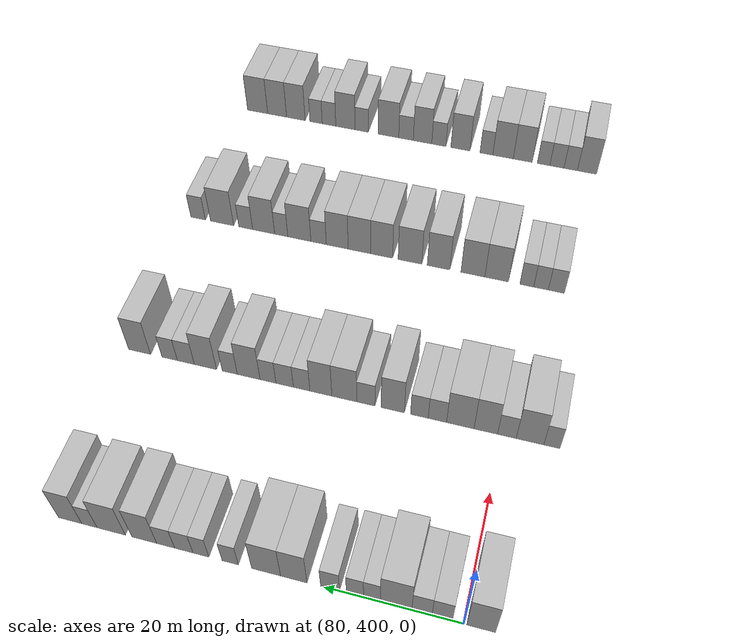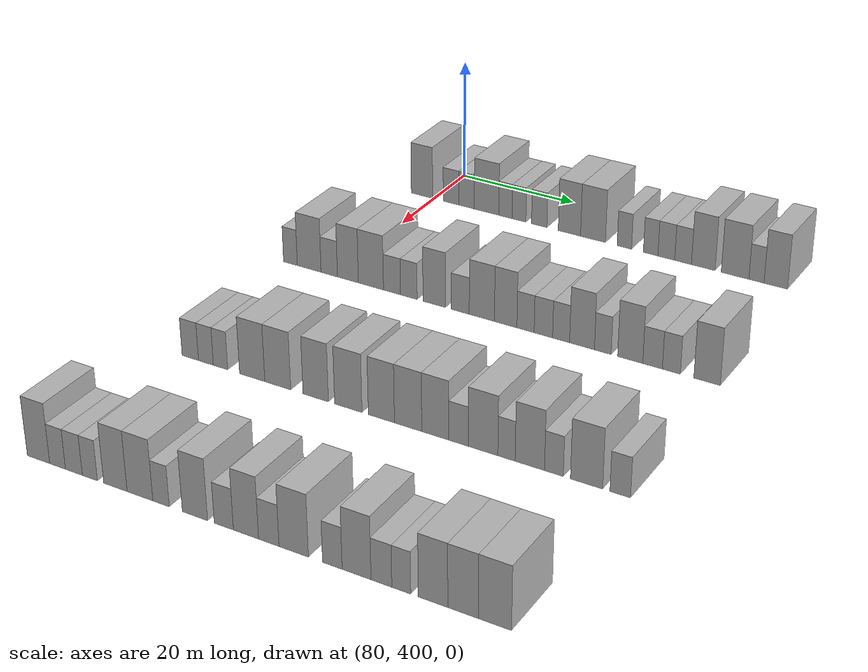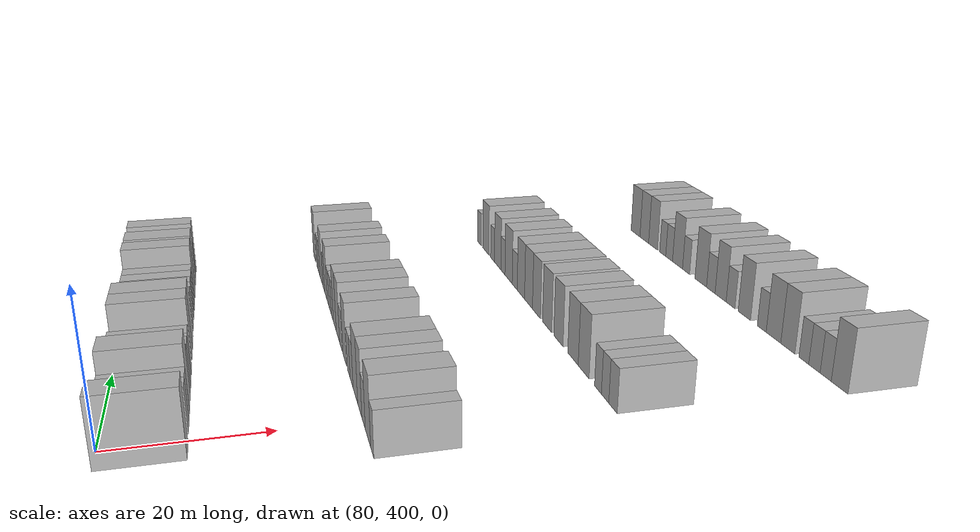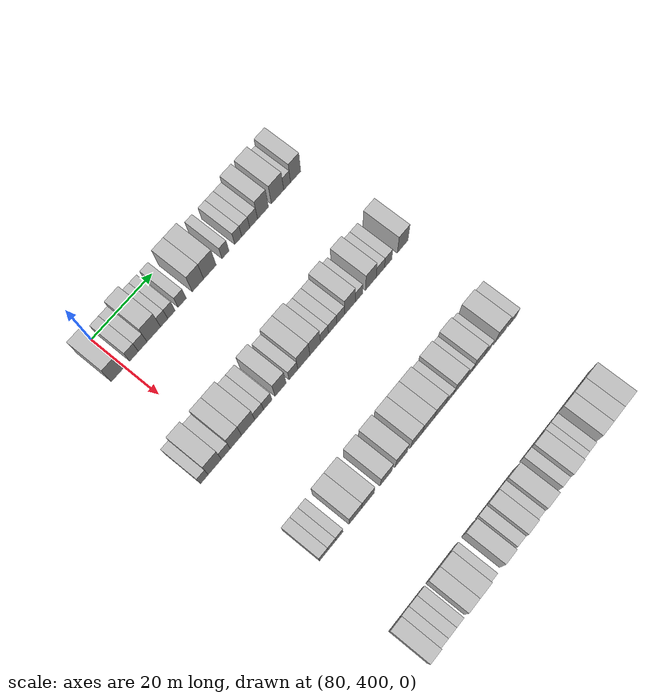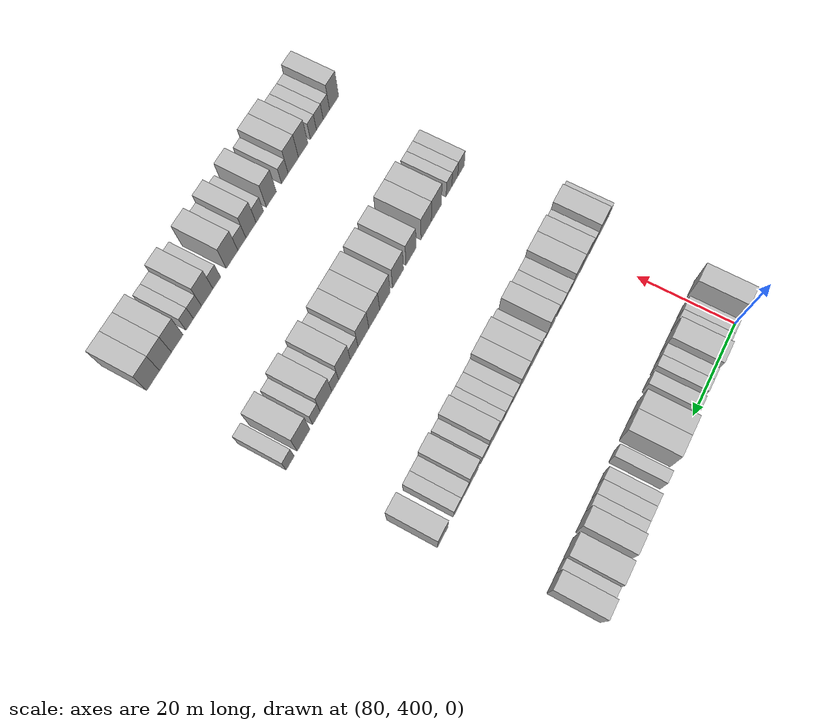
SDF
<sdf version="1.6">
 <world name="default">
  <model name="building_670">
   <static>1</static>
   <pose>85.0000 397.6238 0 0.000000 0.000000 0.000000</pose>
   <link name="link">
    <pose>0 0 4.50 0 0 0</pose>
    <collision name="collision"><geometry><box><size>10.0000 3.9885 9.0000</size></box></geometry></collision>
    <visual name="visual">
     <cast_shadows>0</cast_shadows>
     <geometry><box><size>10.0000 3.9885 9.0000</size></box></geometry>
     <material>
      <script>
       <uri>model://HANNAS_wall/materials/scripts</uri>
       <uri>model://HANNAS_wall/materials/textures</uri>
       <name>vrc/HANNAS_wall</name>
      </script>
     </material>
    </visual>
   </link>
  </model>
  <model name="building_671">
   <static>1</static>
   <pose>85.0000 403.0536 0 0.000000 0.000000 0.000000</pose>
   <link name="link">
    <pose>0 0 3.00 0 0 0</pose>
    <collision name="collision"><geometry><box><size>10.0000 2.8712 6.0000</size></box></geometry></collision>
    <visual name="visual">
     <cast_shadows>0</cast_shadows>
     <geometry><box><size>10.0000 2.8712 6.0000</size></box></geometry>
     <material>
      <script>
       <uri>model://HANNAS_wall/materials/scripts</uri>
       <uri>model://HANNAS_wall/materials/textures</uri>
       <name>vrc/HANNAS_wall</name>
      </script>
     </material>
    </visual>
   </link>
  </model>
  <model name="building_672">
   <static>1</static>
   <pose>85.0000 405.9152 0 0.000000 0.000000 0.000000</pose>
   <link name="link">
    <pose>0 0 3.00 0 0 0</pose>
    <collision name="collision"><geometry><box><size>10.0000 2.8520 6.0000</size></box></geometry></collision>
    <visual name="visual">
     <cast_shadows>0</cast_shadows>
     <geometry><box><size>10.0000 2.8520 6.0000</size></box></geometry>
     <material>
      <script>
       <uri>model://HANNAS_wall/materials/scripts</uri>
       <uri>model://HANNAS_wall/materials/textures</uri>
       <name>vrc/HANNAS_wall</name>
      </script>
     </material>
    </visual>
   </link>
  </model>
  <model name="building_673">
   <static>1</static>
   <pose>85.0000 409.5805 0 0.000000 0.000000 0.000000</pose>
   <link name="link">
    <pose>0 0 4.50 0 0 0</pose>
    <collision name="collision"><geometry><box><size>10.0000 4.4785 9.0000</size></box></geometry></collision>
    <visual name="visual">
     <cast_shadows>0</cast_shadows>
     <geometry><box><size>10.0000 4.4785 9.0000</size></box></geometry>
     <material>
      <script>
       <uri>model://HANNAS_wall/materials/scripts</uri>
       <uri>model://HANNAS_wall/materials/textures</uri>
       <name>vrc/HANNAS_wall</name>
      </script>
     </material>
    </visual>
   </link>
  </model>
  <model name="building_674">
   <static>1</static>
   <pose>85.0000 413.0240 0 0.000000 0.000000 0.000000</pose>
   <link name="link">
    <pose>0 0 3.00 0 0 0</pose>
    <collision name="collision"><geometry><box><size>10.0000 2.4084 6.0000</size></box></geometry></collision>
    <visual name="visual">
     <cast_shadows>0</cast_shadows>
     <geometry><box><size>10.0000 2.4084 6.0000</size></box></geometry>
     <material>
      <script>
       <uri>model://HANNAS_wall/materials/scripts</uri>
       <uri>model://HANNAS_wall/materials/textures</uri>
       <name>vrc/HANNAS_wall</name>
      </script>
     </material>
    </visual>
   </link>
  </model>
  <model name="building_675">
   <static>1</static>
   <pose>85.0000 415.4644 0 0.000000 0.000000 0.000000</pose>
   <link name="link">
    <pose>0 0 3.00 0 0 0</pose>
    <collision name="collision"><geometry><box><size>10.0000 2.4725 6.0000</size></box></geometry></collision>
    <visual name="visual">
     <cast_shadows>0</cast_shadows>
     <geometry><box><size>10.0000 2.4725 6.0000</size></box></geometry>
     <material>
      <script>
       <uri>model://HANNAS_wall/materials/scripts</uri>
       <uri>model://HANNAS_wall/materials/textures</uri>
       <name>vrc/HANNAS_wall</name>
      </script>
     </material>
    </visual>
   </link>
  </model>
  <model name="building_676">
   <static>1</static>
   <pose>85.0000 419.0719 0 0.000000 0.000000 0.000000</pose>
   <link name="link">
    <pose>0 0 3.00 0 0 0</pose>
    <collision name="collision"><geometry><box><size>10.0000 2.7425 6.0000</size></box></geometry></collision>
    <visual name="visual">
     <cast_shadows>0</cast_shadows>
     <geometry><box><size>10.0000 2.7425 6.0000</size></box></geometry>
     <material>
      <script>
       <uri>model://HANNAS_wall/materials/scripts</uri>
       <uri>model://HANNAS_wall/materials/textures</uri>
       <name>vrc/HANNAS_wall</name>
      </script>
     </material>
    </visual>
   </link>
  </model>
  <model name="building_677">
   <static>1</static>
   <pose>85.0000 424.3862 0 0.000000 0.000000 0.000000</pose>
   <link name="link">
    <pose>0 0 4.50 0 0 0</pose>
    <collision name="collision"><geometry><box><size>10.0000 3.8863 9.0000</size></box></geometry></collision>
    <visual name="visual">
     <cast_shadows>0</cast_shadows>
     <geometry><box><size>10.0000 3.8863 9.0000</size></box></geometry>
     <material>
      <script>
       <uri>model://HANNAS_wall/materials/scripts</uri>
       <uri>model://HANNAS_wall/materials/textures</uri>
       <name>vrc/HANNAS_wall</name>
      </script>
     </material>
    </visual>
   </link>
  </model>
  <model name="building_678">
   <static>1</static>
   <pose>85.0000 428.4835 0 0.000000 0.000000 0.000000</pose>
   <link name="link">
    <pose>0 0 4.50 0 0 0</pose>
    <collision name="collision"><geometry><box><size>10.0000 4.3082 9.0000</size></box></geometry></collision>
    <visual name="visual">
     <cast_shadows>0</cast_shadows>
     <geometry><box><size>10.0000 4.3082 9.0000</size></box></geometry>
     <material>
      <script>
       <uri>model://HANNAS_wall/materials/scripts</uri>
       <uri>model://HANNAS_wall/materials/textures</uri>
       <name>vrc/HANNAS_wall</name>
      </script>
     </material>
    </visual>
   </link>
  </model>
  <model name="building_679">
   <static>1</static>
   <pose>85.0000 433.8634 0 0.000000 0.000000 0.000000</pose>
   <link name="link">
    <pose>0 0 3.00 0 0 0</pose>
    <collision name="collision"><geometry><box><size>10.0000 2.4517 6.0000</size></box></geometry></collision>
    <visual name="visual">
     <cast_shadows>0</cast_shadows>
     <geometry><box><size>10.0000 2.4517 6.0000</size></box></geometry>
     <material>
      <script>
       <uri>model://HANNAS_wall/materials/scripts</uri>
       <uri>model://HANNAS_wall/materials/textures</uri>
       <name>vrc/HANNAS_wall</name>
      </script>
     </material>
    </visual>
   </link>
  </model>
  <model name="building_680">
   <static>1</static>
   <pose>85.0000 438.3011 0 0.000000 0.000000 0.000000</pose>
   <link name="link">
    <pose>0 0 3.00 0 0 0</pose>
    <collision name="collision"><geometry><box><size>10.0000 2.4236 6.0000</size></box></geometry></collision>
    <visual name="visual">
     <cast_shadows>0</cast_shadows>
     <geometry><box><size>10.0000 2.4236 6.0000</size></box></geometry>
     <material>
      <script>
       <uri>model://HANNAS_wall/materials/scripts</uri>
       <uri>model://HANNAS_wall/materials/textures</uri>
       <name>vrc/HANNAS_wall</name>
      </script>
     </material>
    </visual>
   </link>
  </model>
  <model name="building_681">
   <static>1</static>
   <pose>85.0000 440.9165 0 0.000000 0.000000 0.000000</pose>
   <link name="link">
    <pose>0 0 3.00 0 0 0</pose>
    <collision name="collision"><geometry><box><size>10.0000 2.8073 6.0000</size></box></geometry></collision>
    <visual name="visual">
     <cast_shadows>0</cast_shadows>
     <geometry><box><size>10.0000 2.8073 6.0000</size></box></geometry>
     <material>
      <script>
       <uri>model://HANNAS_wall/materials/scripts</uri>
       <uri>model://HANNAS_wall/materials/textures</uri>
       <name>vrc/HANNAS_wall</name>
      </script>
     </material>
    </visual>
   </link>
  </model>
  <model name="building_682">
   <static>1</static>
   <pose>85.0000 443.7046 0 0.000000 0.000000 0.000000</pose>
   <link name="link">
    <pose>0 0 3.00 0 0 0</pose>
    <collision name="collision"><geometry><box><size>10.0000 2.7688 6.0000</size></box></geometry></collision>
    <visual name="visual">
     <cast_shadows>0</cast_shadows>
     <geometry><box><size>10.0000 2.7688 6.0000</size></box></geometry>
     <material>
      <script>
       <uri>model://HANNAS_wall/materials/scripts</uri>
       <uri>model://HANNAS_wall/materials/textures</uri>
       <name>vrc/HANNAS_wall</name>
      </script>
     </material>
    </visual>
   </link>
  </model>
  <model name="building_683">
   <static>1</static>
   <pose>85.0000 447.0223 0 0.000000 0.000000 0.000000</pose>
   <link name="link">
    <pose>0 0 4.50 0 0 0</pose>
    <collision name="collision"><geometry><box><size>10.0000 3.8668 9.0000</size></box></geometry></collision>
    <visual name="visual">
     <cast_shadows>0</cast_shadows>
     <geometry><box><size>10.0000 3.8668 9.0000</size></box></geometry>
     <material>
      <script>
       <uri>model://HANNAS_wall/materials/scripts</uri>
       <uri>model://HANNAS_wall/materials/textures</uri>
       <name>vrc/HANNAS_wall</name>
      </script>
     </material>
    </visual>
   </link>
  </model>
  <model name="building_684">
   <static>1</static>
   <pose>85.0000 452.1767 0 0.000000 0.000000 0.000000</pose>
   <link name="link">
    <pose>0 0 4.50 0 0 0</pose>
    <collision name="collision"><geometry><box><size>10.0000 4.4420 9.0000</size></box></geometry></collision>
    <visual name="visual">
     <cast_shadows>0</cast_shadows>
     <geometry><box><size>10.0000 4.4420 9.0000</size></box></geometry>
     <material>
      <script>
       <uri>model://HANNAS_wall/materials/scripts</uri>
       <uri>model://HANNAS_wall/materials/textures</uri>
       <name>vrc/HANNAS_wall</name>
      </script>
     </material>
    </visual>
   </link>
  </model>
  <model name="building_685">
   <static>1</static>
   <pose>85.0000 455.6086 0 0.000000 0.000000 0.000000</pose>
   <link name="link">
    <pose>0 0 3.00 0 0 0</pose>
    <collision name="collision"><geometry><box><size>10.0000 2.4217 6.0000</size></box></geometry></collision>
    <visual name="visual">
     <cast_shadows>0</cast_shadows>
     <geometry><box><size>10.0000 2.4217 6.0000</size></box></geometry>
     <material>
      <script>
       <uri>model://HANNAS_wall/materials/scripts</uri>
       <uri>model://HANNAS_wall/materials/textures</uri>
       <name>vrc/HANNAS_wall</name>
      </script>
     </material>
    </visual>
   </link>
  </model>
  <model name="building_686">
   <static>1</static>
   <pose>85.0000 458.6730 0 0.000000 0.000000 0.000000</pose>
   <link name="link">
    <pose>0 0 4.50 0 0 0</pose>
    <collision name="collision"><geometry><box><size>10.0000 3.7071 9.0000</size></box></geometry></collision>
    <visual name="visual">
     <cast_shadows>0</cast_shadows>
     <geometry><box><size>10.0000 3.7071 9.0000</size></box></geometry>
     <material>
      <script>
       <uri>model://HANNAS_wall/materials/scripts</uri>
       <uri>model://HANNAS_wall/materials/textures</uri>
       <name>vrc/HANNAS_wall</name>
      </script>
     </material>
    </visual>
   </link>
  </model>
  <model name="building_892">
   <static>1</static>
   <pose>115.0000 392.2609 0 0.000000 0.000000 0.000000</pose>
   <link name="link">
    <pose>0 0 3.00 0 0 0</pose>
    <collision name="collision"><geometry><box><size>10.0000 2.5029 6.0000</size></box></geometry></collision>
    <visual name="visual">
     <cast_shadows>0</cast_shadows>
     <geometry><box><size>10.0000 2.5029 6.0000</size></box></geometry>
     <material>
      <script>
       <uri>model://HANNAS_wall/materials/scripts</uri>
       <uri>model://HANNAS_wall/materials/textures</uri>
       <name>vrc/HANNAS_wall</name>
      </script>
     </material>
    </visual>
   </link>
  </model>
  <model name="building_893">
   <static>1</static>
   <pose>115.0000 395.6551 0 0.000000 0.000000 0.000000</pose>
   <link name="link">
    <pose>0 0 4.50 0 0 0</pose>
    <collision name="collision"><geometry><box><size>10.0000 4.2854 9.0000</size></box></geometry></collision>
    <visual name="visual">
     <cast_shadows>0</cast_shadows>
     <geometry><box><size>10.0000 4.2854 9.0000</size></box></geometry>
     <material>
      <script>
       <uri>model://HANNAS_wall/materials/scripts</uri>
       <uri>model://HANNAS_wall/materials/textures</uri>
       <name>vrc/HANNAS_wall</name>
      </script>
     </material>
    </visual>
   </link>
  </model>
  <model name="building_894">
   <static>1</static>
   <pose>115.0000 399.2625 0 0.000000 0.000000 0.000000</pose>
   <link name="link">
    <pose>0 0 3.00 0 0 0</pose>
    <collision name="collision"><geometry><box><size>10.0000 2.9295 6.0000</size></box></geometry></collision>
    <visual name="visual">
     <cast_shadows>0</cast_shadows>
     <geometry><box><size>10.0000 2.9295 6.0000</size></box></geometry>
     <material>
      <script>
       <uri>model://HANNAS_wall/materials/scripts</uri>
       <uri>model://HANNAS_wall/materials/textures</uri>
       <name>vrc/HANNAS_wall</name>
      </script>
     </material>
    </visual>
   </link>
  </model>
  <model name="building_895">
   <static>1</static>
   <pose>115.0000 402.5846 0 0.000000 0.000000 0.000000</pose>
   <link name="link">
    <pose>0 0 4.50 0 0 0</pose>
    <collision name="collision"><geometry><box><size>10.0000 3.7147 9.0000</size></box></geometry></collision>
    <visual name="visual">
     <cast_shadows>0</cast_shadows>
     <geometry><box><size>10.0000 3.7147 9.0000</size></box></geometry>
     <material>
      <script>
       <uri>model://HANNAS_wall/materials/scripts</uri>
       <uri>model://HANNAS_wall/materials/textures</uri>
       <name>vrc/HANNAS_wall</name>
      </script>
     </material>
    </visual>
   </link>
  </model>
  <model name="building_896">
   <static>1</static>
   <pose>115.0000 406.6318 0 0.000000 0.000000 0.000000</pose>
   <link name="link">
    <pose>0 0 4.50 0 0 0</pose>
    <collision name="collision"><geometry><box><size>10.0000 4.3796 9.0000</size></box></geometry></collision>
    <visual name="visual">
     <cast_shadows>0</cast_shadows>
     <geometry><box><size>10.0000 4.3796 9.0000</size></box></geometry>
     <material>
      <script>
       <uri>model://HANNAS_wall/materials/scripts</uri>
       <uri>model://HANNAS_wall/materials/textures</uri>
       <name>vrc/HANNAS_wall</name>
      </script>
     </material>
    </visual>
   </link>
  </model>
  <model name="building_897">
   <static>1</static>
   <pose>115.0000 410.2932 0 0.000000 0.000000 0.000000</pose>
   <link name="link">
    <pose>0 0 3.00 0 0 0</pose>
    <collision name="collision"><geometry><box><size>10.0000 2.9433 6.0000</size></box></geometry></collision>
    <visual name="visual">
     <cast_shadows>0</cast_shadows>
     <geometry><box><size>10.0000 2.9433 6.0000</size></box></geometry>
     <material>
      <script>
       <uri>model://HANNAS_wall/materials/scripts</uri>
       <uri>model://HANNAS_wall/materials/textures</uri>
       <name>vrc/HANNAS_wall</name>
      </script>
     </material>
    </visual>
   </link>
  </model>
  <model name="building_898">
   <static>1</static>
   <pose>115.0000 413.1930 0 0.000000 0.000000 0.000000</pose>
   <link name="link">
    <pose>0 0 3.00 0 0 0</pose>
    <collision name="collision"><geometry><box><size>10.0000 2.8564 6.0000</size></box></geometry></collision>
    <visual name="visual">
     <cast_shadows>0</cast_shadows>
     <geometry><box><size>10.0000 2.8564 6.0000</size></box></geometry>
     <material>
      <script>
       <uri>model://HANNAS_wall/materials/scripts</uri>
       <uri>model://HANNAS_wall/materials/textures</uri>
       <name>vrc/HANNAS_wall</name>
      </script>
     </material>
    </visual>
   </link>
  </model>
  <model name="building_899">
   <static>1</static>
   <pose>115.0000 417.5178 0 0.000000 0.000000 0.000000</pose>
   <link name="link">
    <pose>0 0 4.50 0 0 0</pose>
    <collision name="collision"><geometry><box><size>10.0000 3.7932 9.0000</size></box></geometry></collision>
    <visual name="visual">
     <cast_shadows>0</cast_shadows>
     <geometry><box><size>10.0000 3.7932 9.0000</size></box></geometry>
     <material>
      <script>
       <uri>model://HANNAS_wall/materials/scripts</uri>
       <uri>model://HANNAS_wall/materials/textures</uri>
       <name>vrc/HANNAS_wall</name>
      </script>
     </material>
    </visual>
   </link>
  </model>
  <model name="building_900">
   <static>1</static>
   <pose>115.0000 421.9022 0 0.000000 0.000000 0.000000</pose>
   <link name="link">
    <pose>0 0 3.00 0 0 0</pose>
    <collision name="collision"><geometry><box><size>10.0000 2.9756 6.0000</size></box></geometry></collision>
    <visual name="visual">
     <cast_shadows>0</cast_shadows>
     <geometry><box><size>10.0000 2.9756 6.0000</size></box></geometry>
     <material>
      <script>
       <uri>model://HANNAS_wall/materials/scripts</uri>
       <uri>model://HANNAS_wall/materials/textures</uri>
       <name>vrc/HANNAS_wall</name>
      </script>
     </material>
    </visual>
   </link>
  </model>
  <model name="building_901">
   <static>1</static>
   <pose>115.0000 425.4659 0 0.000000 0.000000 0.000000</pose>
   <link name="link">
    <pose>0 0 4.50 0 0 0</pose>
    <collision name="collision"><geometry><box><size>10.0000 4.1519 9.0000</size></box></geometry></collision>
    <visual name="visual">
     <cast_shadows>0</cast_shadows>
     <geometry><box><size>10.0000 4.1519 9.0000</size></box></geometry>
     <material>
      <script>
       <uri>model://HANNAS_wall/materials/scripts</uri>
       <uri>model://HANNAS_wall/materials/textures</uri>
       <name>vrc/HANNAS_wall</name>
      </script>
     </material>
    </visual>
   </link>
  </model>
  <model name="building_902">
   <static>1</static>
   <pose>115.0000 429.3774 0 0.000000 0.000000 0.000000</pose>
   <link name="link">
    <pose>0 0 4.50 0 0 0</pose>
    <collision name="collision"><geometry><box><size>10.0000 3.6711 9.0000</size></box></geometry></collision>
    <visual name="visual">
     <cast_shadows>0</cast_shadows>
     <geometry><box><size>10.0000 3.6711 9.0000</size></box></geometry>
     <material>
      <script>
       <uri>model://HANNAS_wall/materials/scripts</uri>
       <uri>model://HANNAS_wall/materials/textures</uri>
       <name>vrc/HANNAS_wall</name>
      </script>
     </material>
    </visual>
   </link>
  </model>
  <model name="building_903">
   <static>1</static>
   <pose>115.0000 432.6002 0 0.000000 0.000000 0.000000</pose>
   <link name="link">
    <pose>0 0 3.00 0 0 0</pose>
    <collision name="collision"><geometry><box><size>10.0000 2.7744 6.0000</size></box></geometry></collision>
    <visual name="visual">
     <cast_shadows>0</cast_shadows>
     <geometry><box><size>10.0000 2.7744 6.0000</size></box></geometry>
     <material>
      <script>
       <uri>model://HANNAS_wall/materials/scripts</uri>
       <uri>model://HANNAS_wall/materials/textures</uri>
       <name>vrc/HANNAS_wall</name>
      </script>
     </material>
    </visual>
   </link>
  </model>
  <model name="building_904">
   <static>1</static>
   <pose>115.0000 435.4635 0 0.000000 0.000000 0.000000</pose>
   <link name="link">
    <pose>0 0 3.00 0 0 0</pose>
    <collision name="collision"><geometry><box><size>10.0000 2.9524 6.0000</size></box></geometry></collision>
    <visual name="visual">
     <cast_shadows>0</cast_shadows>
     <geometry><box><size>10.0000 2.9524 6.0000</size></box></geometry>
     <material>
      <script>
       <uri>model://HANNAS_wall/materials/scripts</uri>
       <uri>model://HANNAS_wall/materials/textures</uri>
       <name>vrc/HANNAS_wall</name>
      </script>
     </material>
    </visual>
   </link>
  </model>
  <model name="building_905">
   <static>1</static>
   <pose>115.0000 438.2882 0 0.000000 0.000000 0.000000</pose>
   <link name="link">
    <pose>0 0 3.00 0 0 0</pose>
    <collision name="collision"><geometry><box><size>10.0000 2.6970 6.0000</size></box></geometry></collision>
    <visual name="visual">
     <cast_shadows>0</cast_shadows>
     <geometry><box><size>10.0000 2.6970 6.0000</size></box></geometry>
     <material>
      <script>
       <uri>model://HANNAS_wall/materials/scripts</uri>
       <uri>model://HANNAS_wall/materials/textures</uri>
       <name>vrc/HANNAS_wall</name>
      </script>
     </material>
    </visual>
   </link>
  </model>
  <model name="building_906">
   <static>1</static>
   <pose>115.0000 441.5805 0 0.000000 0.000000 0.000000</pose>
   <link name="link">
    <pose>0 0 4.50 0 0 0</pose>
    <collision name="collision"><geometry><box><size>10.0000 3.8874 9.0000</size></box></geometry></collision>
    <visual name="visual">
     <cast_shadows>0</cast_shadows>
     <geometry><box><size>10.0000 3.8874 9.0000</size></box></geometry>
     <material>
      <script>
       <uri>model://HANNAS_wall/materials/scripts</uri>
       <uri>model://HANNAS_wall/materials/textures</uri>
       <name>vrc/HANNAS_wall</name>
      </script>
     </material>
    </visual>
   </link>
  </model>
  <model name="building_907">
   <static>1</static>
   <pose>115.0000 444.8221 0 0.000000 0.000000 0.000000</pose>
   <link name="link">
    <pose>0 0 3.00 0 0 0</pose>
    <collision name="collision"><geometry><box><size>10.0000 2.5959 6.0000</size></box></geometry></collision>
    <visual name="visual">
     <cast_shadows>0</cast_shadows>
     <geometry><box><size>10.0000 2.5959 6.0000</size></box></geometry>
     <material>
      <script>
       <uri>model://HANNAS_wall/materials/scripts</uri>
       <uri>model://HANNAS_wall/materials/textures</uri>
       <name>vrc/HANNAS_wall</name>
      </script>
     </material>
    </visual>
   </link>
  </model>
  <model name="building_908">
   <static>1</static>
   <pose>115.0000 449.0435 0 0.000000 0.000000 0.000000</pose>
   <link name="link">
    <pose>0 0 4.50 0 0 0</pose>
    <collision name="collision"><geometry><box><size>10.0000 3.8468 9.0000</size></box></geometry></collision>
    <visual name="visual">
     <cast_shadows>0</cast_shadows>
     <geometry><box><size>10.0000 3.8468 9.0000</size></box></geometry>
     <material>
      <script>
       <uri>model://HANNAS_wall/materials/scripts</uri>
       <uri>model://HANNAS_wall/materials/textures</uri>
       <name>vrc/HANNAS_wall</name>
      </script>
     </material>
    </visual>
   </link>
  </model>
  <model name="building_909">
   <static>1</static>
   <pose>115.0000 452.4516 0 0.000000 0.000000 0.000000</pose>
   <link name="link">
    <pose>0 0 3.00 0 0 0</pose>
    <collision name="collision"><geometry><box><size>10.0000 2.9696 6.0000</size></box></geometry></collision>
    <visual name="visual">
     <cast_shadows>0</cast_shadows>
     <geometry><box><size>10.0000 2.9696 6.0000</size></box></geometry>
     <material>
      <script>
       <uri>model://HANNAS_wall/materials/scripts</uri>
       <uri>model://HANNAS_wall/materials/textures</uri>
       <name>vrc/HANNAS_wall</name>
      </script>
     </material>
    </visual>
   </link>
  </model>
  <model name="building_910">
   <static>1</static>
   <pose>115.0000 455.2880 0 0.000000 0.000000 0.000000</pose>
   <link name="link">
    <pose>0 0 3.00 0 0 0</pose>
    <collision name="collision"><geometry><box><size>10.0000 2.7031 6.0000</size></box></geometry></collision>
    <visual name="visual">
     <cast_shadows>0</cast_shadows>
     <geometry><box><size>10.0000 2.7031 6.0000</size></box></geometry>
     <material>
      <script>
       <uri>model://HANNAS_wall/materials/scripts</uri>
       <uri>model://HANNAS_wall/materials/textures</uri>
       <name>vrc/HANNAS_wall</name>
      </script>
     </material>
    </visual>
   </link>
  </model>
  <model name="building_911">
   <static>1</static>
   <pose>115.0000 460.5904 0 0.000000 0.000000 0.000000</pose>
   <link name="link">
    <pose>0 0 4.50 0 0 0</pose>
    <collision name="collision"><geometry><box><size>10.0000 3.9017 9.0000</size></box></geometry></collision>
    <visual name="visual">
     <cast_shadows>0</cast_shadows>
     <geometry><box><size>10.0000 3.9017 9.0000</size></box></geometry>
     <material>
      <script>
       <uri>model://HANNAS_wall/materials/scripts</uri>
       <uri>model://HANNAS_wall/materials/textures</uri>
       <name>vrc/HANNAS_wall</name>
      </script>
     </material>
    </visual>
   </link>
  </model>
  <model name="building_1136">
   <static>1</static>
   <pose>145.0000 395.7928 0 0.000000 0.000000 0.000000</pose>
   <link name="link">
    <pose>0 0 3.00 0 0 0</pose>
    <collision name="collision"><geometry><box><size>10.0000 2.8026 6.0000</size></box></geometry></collision>
    <visual name="visual">
     <cast_shadows>0</cast_shadows>
     <geometry><box><size>10.0000 2.8026 6.0000</size></box></geometry>
     <material>
      <script>
       <uri>model://HANNAS_wall/materials/scripts</uri>
       <uri>model://HANNAS_wall/materials/textures</uri>
       <name>vrc/HANNAS_wall</name>
      </script>
     </material>
    </visual>
   </link>
  </model>
  <model name="building_1137">
   <static>1</static>
   <pose>145.0000 398.4658 0 0.000000 0.000000 0.000000</pose>
   <link name="link">
    <pose>0 0 3.00 0 0 0</pose>
    <collision name="collision"><geometry><box><size>10.0000 2.5434 6.0000</size></box></geometry></collision>
    <visual name="visual">
     <cast_shadows>0</cast_shadows>
     <geometry><box><size>10.0000 2.5434 6.0000</size></box></geometry>
     <material>
      <script>
       <uri>model://HANNAS_wall/materials/scripts</uri>
       <uri>model://HANNAS_wall/materials/textures</uri>
       <name>vrc/HANNAS_wall</name>
      </script>
     </material>
    </visual>
   </link>
  </model>
  <model name="building_1138">
   <static>1</static>
   <pose>145.0000 400.9520 0 0.000000 0.000000 0.000000</pose>
   <link name="link">
    <pose>0 0 3.00 0 0 0</pose>
    <collision name="collision"><geometry><box><size>10.0000 2.4290 6.0000</size></box></geometry></collision>
    <visual name="visual">
     <cast_shadows>0</cast_shadows>
     <geometry><box><size>10.0000 2.4290 6.0000</size></box></geometry>
     <material>
      <script>
       <uri>model://HANNAS_wall/materials/scripts</uri>
       <uri>model://HANNAS_wall/materials/textures</uri>
       <name>vrc/HANNAS_wall</name>
      </script>
     </material>
    </visual>
   </link>
  </model>
  <model name="building_1139">
   <static>1</static>
   <pose>145.0000 406.2638 0 0.000000 0.000000 0.000000</pose>
   <link name="link">
    <pose>0 0 4.50 0 0 0</pose>
    <collision name="collision"><geometry><box><size>10.0000 4.1945 9.0000</size></box></geometry></collision>
    <visual name="visual">
     <cast_shadows>0</cast_shadows>
     <geometry><box><size>10.0000 4.1945 9.0000</size></box></geometry>
     <material>
      <script>
       <uri>model://HANNAS_wall/materials/scripts</uri>
       <uri>model://HANNAS_wall/materials/textures</uri>
       <name>vrc/HANNAS_wall</name>
      </script>
     </material>
    </visual>
   </link>
  </model>
  <model name="building_1140">
   <static>1</static>
   <pose>145.0000 410.4862 0 0.000000 0.000000 0.000000</pose>
   <link name="link">
    <pose>0 0 4.50 0 0 0</pose>
    <collision name="collision"><geometry><box><size>10.0000 4.2504 9.0000</size></box></geometry></collision>
    <visual name="visual">
     <cast_shadows>0</cast_shadows>
     <geometry><box><size>10.0000 4.2504 9.0000</size></box></geometry>
     <material>
      <script>
       <uri>model://HANNAS_wall/materials/scripts</uri>
       <uri>model://HANNAS_wall/materials/textures</uri>
       <name>vrc/HANNAS_wall</name>
      </script>
     </material>
    </visual>
   </link>
  </model>
  <model name="building_1141">
   <static>1</static>
   <pose>145.0000 416.6486 0 0.000000 0.000000 0.000000</pose>
   <link name="link">
    <pose>0 0 4.50 0 0 0</pose>
    <collision name="collision"><geometry><box><size>10.0000 4.0744 9.0000</size></box></geometry></collision>
    <visual name="visual">
     <cast_shadows>0</cast_shadows>
     <geometry><box><size>10.0000 4.0744 9.0000</size></box></geometry>
     <material>
      <script>
       <uri>model://HANNAS_wall/materials/scripts</uri>
       <uri>model://HANNAS_wall/materials/textures</uri>
       <name>vrc/HANNAS_wall</name>
      </script>
     </material>
    </visual>
   </link>
  </model>
  <model name="building_1142">
   <static>1</static>
   <pose>145.0000 421.8408 0 0.000000 0.000000 0.000000</pose>
   <link name="link">
    <pose>0 0 4.50 0 0 0</pose>
    <collision name="collision"><geometry><box><size>10.0000 4.3101 9.0000</size></box></geometry></collision>
    <visual name="visual">
     <cast_shadows>0</cast_shadows>
     <geometry><box><size>10.0000 4.3101 9.0000</size></box></geometry>
     <material>
      <script>
       <uri>model://HANNAS_wall/materials/scripts</uri>
       <uri>model://HANNAS_wall/materials/textures</uri>
       <name>vrc/HANNAS_wall</name>
      </script>
     </material>
    </visual>
   </link>
  </model>
  <model name="building_1143">
   <static>1</static>
   <pose>145.0000 427.0187 0 0.000000 0.000000 0.000000</pose>
   <link name="link">
    <pose>0 0 4.50 0 0 0</pose>
    <collision name="collision"><geometry><box><size>10.0000 4.0456 9.0000</size></box></geometry></collision>
    <visual name="visual">
     <cast_shadows>0</cast_shadows>
     <geometry><box><size>10.0000 4.0456 9.0000</size></box></geometry>
     <material>
      <script>
       <uri>model://HANNAS_wall/materials/scripts</uri>
       <uri>model://HANNAS_wall/materials/textures</uri>
       <name>vrc/HANNAS_wall</name>
      </script>
     </material>
    </visual>
   </link>
  </model>
  <model name="building_1144">
   <static>1</static>
   <pose>145.0000 431.1305 0 0.000000 0.000000 0.000000</pose>
   <link name="link">
    <pose>0 0 4.50 0 0 0</pose>
    <collision name="collision"><geometry><box><size>10.0000 4.1780 9.0000</size></box></geometry></collision>
    <visual name="visual">
     <cast_shadows>0</cast_shadows>
     <geometry><box><size>10.0000 4.1780 9.0000</size></box></geometry>
     <material>
      <script>
       <uri>model://HANNAS_wall/materials/scripts</uri>
       <uri>model://HANNAS_wall/materials/textures</uri>
       <name>vrc/HANNAS_wall</name>
      </script>
     </material>
    </visual>
   </link>
  </model>
  <model name="building_1145">
   <static>1</static>
   <pose>145.0000 435.2645 0 0.000000 0.000000 0.000000</pose>
   <link name="link">
    <pose>0 0 4.50 0 0 0</pose>
    <collision name="collision"><geometry><box><size>10.0000 4.0899 9.0000</size></box></geometry></collision>
    <visual name="visual">
     <cast_shadows>0</cast_shadows>
     <geometry><box><size>10.0000 4.0899 9.0000</size></box></geometry>
     <material>
      <script>
       <uri>model://HANNAS_wall/materials/scripts</uri>
       <uri>model://HANNAS_wall/materials/textures</uri>
       <name>vrc/HANNAS_wall</name>
      </script>
     </material>
    </visual>
   </link>
  </model>
  <model name="building_1146">
   <static>1</static>
   <pose>145.0000 438.7548 0 0.000000 0.000000 0.000000</pose>
   <link name="link">
    <pose>0 0 3.00 0 0 0</pose>
    <collision name="collision"><geometry><box><size>10.0000 2.8907 6.0000</size></box></geometry></collision>
    <visual name="visual">
     <cast_shadows>0</cast_shadows>
     <geometry><box><size>10.0000 2.8907 6.0000</size></box></geometry>
     <material>
      <script>
       <uri>model://HANNAS_wall/materials/scripts</uri>
       <uri>model://HANNAS_wall/materials/textures</uri>
       <name>vrc/HANNAS_wall</name>
      </script>
     </material>
    </visual>
   </link>
  </model>
  <model name="building_1147">
   <static>1</static>
   <pose>145.0000 442.3794 0 0.000000 0.000000 0.000000</pose>
   <link name="link">
    <pose>0 0 4.50 0 0 0</pose>
    <collision name="collision"><geometry><box><size>10.0000 4.3585 9.0000</size></box></geometry></collision>
    <visual name="visual">
     <cast_shadows>0</cast_shadows>
     <geometry><box><size>10.0000 4.3585 9.0000</size></box></geometry>
     <material>
      <script>
       <uri>model://HANNAS_wall/materials/scripts</uri>
       <uri>model://HANNAS_wall/materials/textures</uri>
       <name>vrc/HANNAS_wall</name>
      </script>
     </material>
    </visual>
   </link>
  </model>
  <model name="building_1148">
   <static>1</static>
   <pose>145.0000 445.8122 0 0.000000 0.000000 0.000000</pose>
   <link name="link">
    <pose>0 0 3.00 0 0 0</pose>
    <collision name="collision"><geometry><box><size>10.0000 2.5071 6.0000</size></box></geometry></collision>
    <visual name="visual">
     <cast_shadows>0</cast_shadows>
     <geometry><box><size>10.0000 2.5071 6.0000</size></box></geometry>
     <material>
      <script>
       <uri>model://HANNAS_wall/materials/scripts</uri>
       <uri>model://HANNAS_wall/materials/textures</uri>
       <name>vrc/HANNAS_wall</name>
      </script>
     </material>
    </visual>
   </link>
  </model>
  <model name="building_1149">
   <static>1</static>
   <pose>145.0000 449.1739 0 0.000000 0.000000 0.000000</pose>
   <link name="link">
    <pose>0 0 4.50 0 0 0</pose>
    <collision name="collision"><geometry><box><size>10.0000 4.2165 9.0000</size></box></geometry></collision>
    <visual name="visual">
     <cast_shadows>0</cast_shadows>
     <geometry><box><size>10.0000 4.2165 9.0000</size></box></geometry>
     <material>
      <script>
       <uri>model://HANNAS_wall/materials/scripts</uri>
       <uri>model://HANNAS_wall/materials/textures</uri>
       <name>vrc/HANNAS_wall</name>
      </script>
     </material>
    </visual>
   </link>
  </model>
  <model name="building_1150">
   <static>1</static>
   <pose>145.0000 452.6202 0 0.000000 0.000000 0.000000</pose>
   <link name="link">
    <pose>0 0 3.00 0 0 0</pose>
    <collision name="collision"><geometry><box><size>10.0000 2.6760 6.0000</size></box></geometry></collision>
    <visual name="visual">
     <cast_shadows>0</cast_shadows>
     <geometry><box><size>10.0000 2.6760 6.0000</size></box></geometry>
     <material>
      <script>
       <uri>model://HANNAS_wall/materials/scripts</uri>
       <uri>model://HANNAS_wall/materials/textures</uri>
       <name>vrc/HANNAS_wall</name>
      </script>
     </material>
    </visual>
   </link>
  </model>
  <model name="building_1151">
   <static>1</static>
   <pose>145.0000 457.2070 0 0.000000 0.000000 0.000000</pose>
   <link name="link">
    <pose>0 0 4.50 0 0 0</pose>
    <collision name="collision"><geometry><box><size>10.0000 4.4975 9.0000</size></box></geometry></collision>
    <visual name="visual">
     <cast_shadows>0</cast_shadows>
     <geometry><box><size>10.0000 4.4975 9.0000</size></box></geometry>
     <material>
      <script>
       <uri>model://HANNAS_wall/materials/scripts</uri>
       <uri>model://HANNAS_wall/materials/textures</uri>
       <name>vrc/HANNAS_wall</name>
      </script>
     </material>
    </visual>
   </link>
  </model>
  <model name="building_1152">
   <static>1</static>
   <pose>145.0000 461.8717 0 0.000000 0.000000 0.000000</pose>
   <link name="link">
    <pose>0 0 3.00 0 0 0</pose>
    <collision name="collision"><geometry><box><size>10.0000 2.8319 6.0000</size></box></geometry></collision>
    <visual name="visual">
     <cast_shadows>0</cast_shadows>
     <geometry><box><size>10.0000 2.8319 6.0000</size></box></geometry>
     <material>
      <script>
       <uri>model://HANNAS_wall/materials/scripts</uri>
       <uri>model://HANNAS_wall/materials/textures</uri>
       <name>vrc/HANNAS_wall</name>
      </script>
     </material>
    </visual>
   </link>
  </model>
  <model name="building_1359">
   <static>1</static>
   <pose>175.0000 394.1387 0 0.000000 0.000000 0.000000</pose>
   <link name="link">
    <pose>0 0 4.50 0 0 0</pose>
    <collision name="collision"><geometry><box><size>10.0000 3.6815 9.0000</size></box></geometry></collision>
    <visual name="visual">
     <cast_shadows>0</cast_shadows>
     <geometry><box><size>10.0000 3.6815 9.0000</size></box></geometry>
     <material>
      <script>
       <uri>model://HANNAS_wall/materials/scripts</uri>
       <uri>model://HANNAS_wall/materials/textures</uri>
       <name>vrc/HANNAS_wall</name>
      </script>
     </material>
    </visual>
   </link>
  </model>
  <model name="building_1360">
   <static>1</static>
   <pose>175.0000 397.2654 0 0.000000 0.000000 0.000000</pose>
   <link name="link">
    <pose>0 0 3.00 0 0 0</pose>
    <collision name="collision"><geometry><box><size>10.0000 2.5719 6.0000</size></box></geometry></collision>
    <visual name="visual">
     <cast_shadows>0</cast_shadows>
     <geometry><box><size>10.0000 2.5719 6.0000</size></box></geometry>
     <material>
      <script>
       <uri>model://HANNAS_wall/materials/scripts</uri>
       <uri>model://HANNAS_wall/materials/textures</uri>
       <name>vrc/HANNAS_wall</name>
      </script>
     </material>
    </visual>
   </link>
  </model>
  <model name="building_1361">
   <static>1</static>
   <pose>175.0000 399.9125 0 0.000000 0.000000 0.000000</pose>
   <link name="link">
    <pose>0 0 3.00 0 0 0</pose>
    <collision name="collision"><geometry><box><size>10.0000 2.7224 6.0000</size></box></geometry></collision>
    <visual name="visual">
     <cast_shadows>0</cast_shadows>
     <geometry><box><size>10.0000 2.7224 6.0000</size></box></geometry>
     <material>
      <script>
       <uri>model://HANNAS_wall/materials/scripts</uri>
       <uri>model://HANNAS_wall/materials/textures</uri>
       <name>vrc/HANNAS_wall</name>
      </script>
     </material>
    </visual>
   </link>
  </model>
  <model name="building_1362">
   <static>1</static>
   <pose>175.0000 402.4846 0 0.000000 0.000000 0.000000</pose>
   <link name="link">
    <pose>0 0 3.00 0 0 0</pose>
    <collision name="collision"><geometry><box><size>10.0000 2.4218 6.0000</size></box></geometry></collision>
    <visual name="visual">
     <cast_shadows>0</cast_shadows>
     <geometry><box><size>10.0000 2.4218 6.0000</size></box></geometry>
     <material>
      <script>
       <uri>model://HANNAS_wall/materials/scripts</uri>
       <uri>model://HANNAS_wall/materials/textures</uri>
       <name>vrc/HANNAS_wall</name>
      </script>
     </material>
    </visual>
   </link>
  </model>
  <model name="building_1363">
   <static>1</static>
   <pose>175.0000 406.5433 0 0.000000 0.000000 0.000000</pose>
   <link name="link">
    <pose>0 0 4.50 0 0 0</pose>
    <collision name="collision"><geometry><box><size>10.0000 3.6955 9.0000</size></box></geometry></collision>
    <visual name="visual">
     <cast_shadows>0</cast_shadows>
     <geometry><box><size>10.0000 3.6955 9.0000</size></box></geometry>
     <material>
      <script>
       <uri>model://HANNAS_wall/materials/scripts</uri>
       <uri>model://HANNAS_wall/materials/textures</uri>
       <name>vrc/HANNAS_wall</name>
      </script>
     </material>
    </visual>
   </link>
  </model>
  <model name="building_1364">
   <static>1</static>
   <pose>175.0000 410.3944 0 0.000000 0.000000 0.000000</pose>
   <link name="link">
    <pose>0 0 4.50 0 0 0</pose>
    <collision name="collision"><geometry><box><size>10.0000 4.0067 9.0000</size></box></geometry></collision>
    <visual name="visual">
     <cast_shadows>0</cast_shadows>
     <geometry><box><size>10.0000 4.0067 9.0000</size></box></geometry>
     <material>
      <script>
       <uri>model://HANNAS_wall/materials/scripts</uri>
       <uri>model://HANNAS_wall/materials/textures</uri>
       <name>vrc/HANNAS_wall</name>
      </script>
     </material>
    </visual>
   </link>
  </model>
  <model name="building_1365">
   <static>1</static>
   <pose>175.0000 413.6606 0 0.000000 0.000000 0.000000</pose>
   <link name="link">
    <pose>0 0 3.00 0 0 0</pose>
    <collision name="collision"><geometry><box><size>10.0000 2.5257 6.0000</size></box></geometry></collision>
    <visual name="visual">
     <cast_shadows>0</cast_shadows>
     <geometry><box><size>10.0000 2.5257 6.0000</size></box></geometry>
     <material>
      <script>
       <uri>model://HANNAS_wall/materials/scripts</uri>
       <uri>model://HANNAS_wall/materials/textures</uri>
       <name>vrc/HANNAS_wall</name>
      </script>
     </material>
    </visual>
   </link>
  </model>
  <model name="building_1366">
   <static>1</static>
   <pose>175.0000 418.8268 0 0.000000 0.000000 0.000000</pose>
   <link name="link">
    <pose>0 0 4.50 0 0 0</pose>
    <collision name="collision"><geometry><box><size>10.0000 3.8067 9.0000</size></box></geometry></collision>
    <visual name="visual">
     <cast_shadows>0</cast_shadows>
     <geometry><box><size>10.0000 3.8067 9.0000</size></box></geometry>
     <material>
      <script>
       <uri>model://HANNAS_wall/materials/scripts</uri>
       <uri>model://HANNAS_wall/materials/textures</uri>
       <name>vrc/HANNAS_wall</name>
      </script>
     </material>
    </visual>
   </link>
  </model>
  <model name="building_1367">
   <static>1</static>
   <pose>175.0000 423.1458 0 0.000000 0.000000 0.000000</pose>
   <link name="link">
    <pose>0 0 3.00 0 0 0</pose>
    <collision name="collision"><geometry><box><size>10.0000 2.8314 6.0000</size></box></geometry></collision>
    <visual name="visual">
     <cast_shadows>0</cast_shadows>
     <geometry><box><size>10.0000 2.8314 6.0000</size></box></geometry>
     <material>
      <script>
       <uri>model://HANNAS_wall/materials/scripts</uri>
       <uri>model://HANNAS_wall/materials/textures</uri>
       <name>vrc/HANNAS_wall</name>
      </script>
     </material>
    </visual>
   </link>
  </model>
  <model name="building_1368">
   <static>1</static>
   <pose>175.0000 426.4187 0 0.000000 0.000000 0.000000</pose>
   <link name="link">
    <pose>0 0 4.50 0 0 0</pose>
    <collision name="collision"><geometry><box><size>10.0000 3.7143 9.0000</size></box></geometry></collision>
    <visual name="visual">
     <cast_shadows>0</cast_shadows>
     <geometry><box><size>10.0000 3.7143 9.0000</size></box></geometry>
     <material>
      <script>
       <uri>model://HANNAS_wall/materials/scripts</uri>
       <uri>model://HANNAS_wall/materials/textures</uri>
       <name>vrc/HANNAS_wall</name>
      </script>
     </material>
    </visual>
   </link>
  </model>
  <model name="building_1369">
   <static>1</static>
   <pose>175.0000 429.7556 0 0.000000 0.000000 0.000000</pose>
   <link name="link">
    <pose>0 0 3.00 0 0 0</pose>
    <collision name="collision"><geometry><box><size>10.0000 2.9596 6.0000</size></box></geometry></collision>
    <visual name="visual">
     <cast_shadows>0</cast_shadows>
     <geometry><box><size>10.0000 2.9596 6.0000</size></box></geometry>
     <material>
      <script>
       <uri>model://HANNAS_wall/materials/scripts</uri>
       <uri>model://HANNAS_wall/materials/textures</uri>
       <name>vrc/HANNAS_wall</name>
      </script>
     </material>
    </visual>
   </link>
  </model>
  <model name="building_1370">
   <static>1</static>
   <pose>175.0000 433.3374 0 0.000000 0.000000 0.000000</pose>
   <link name="link">
    <pose>0 0 4.50 0 0 0</pose>
    <collision name="collision"><geometry><box><size>10.0000 4.2039 9.0000</size></box></geometry></collision>
    <visual name="visual">
     <cast_shadows>0</cast_shadows>
     <geometry><box><size>10.0000 4.2039 9.0000</size></box></geometry>
     <material>
      <script>
       <uri>model://HANNAS_wall/materials/scripts</uri>
       <uri>model://HANNAS_wall/materials/textures</uri>
       <name>vrc/HANNAS_wall</name>
      </script>
     </material>
    </visual>
   </link>
  </model>
  <model name="building_1371">
   <static>1</static>
   <pose>175.0000 438.8101 0 0.000000 0.000000 0.000000</pose>
   <link name="link">
    <pose>0 0 3.00 0 0 0</pose>
    <collision name="collision"><geometry><box><size>10.0000 2.7415 6.0000</size></box></geometry></collision>
    <visual name="visual">
     <cast_shadows>0</cast_shadows>
     <geometry><box><size>10.0000 2.7415 6.0000</size></box></geometry>
     <material>
      <script>
       <uri>model://HANNAS_wall/materials/scripts</uri>
       <uri>model://HANNAS_wall/materials/textures</uri>
       <name>vrc/HANNAS_wall</name>
      </script>
     </material>
    </visual>
   </link>
  </model>
  <model name="building_1372">
   <static>1</static>
   <pose>175.0000 442.1751 0 0.000000 0.000000 0.000000</pose>
   <link name="link">
    <pose>0 0 4.50 0 0 0</pose>
    <collision name="collision"><geometry><box><size>10.0000 3.9884 9.0000</size></box></geometry></collision>
    <visual name="visual">
     <cast_shadows>0</cast_shadows>
     <geometry><box><size>10.0000 3.9884 9.0000</size></box></geometry>
     <material>
      <script>
       <uri>model://HANNAS_wall/materials/scripts</uri>
       <uri>model://HANNAS_wall/materials/textures</uri>
       <name>vrc/HANNAS_wall</name>
      </script>
     </material>
    </visual>
   </link>
  </model>
  <model name="building_1373">
   <static>1</static>
   <pose>175.0000 445.5851 0 0.000000 0.000000 0.000000</pose>
   <link name="link">
    <pose>0 0 3.00 0 0 0</pose>
    <collision name="collision"><geometry><box><size>10.0000 2.8316 6.0000</size></box></geometry></collision>
    <visual name="visual">
     <cast_shadows>0</cast_shadows>
     <geometry><box><size>10.0000 2.8316 6.0000</size></box></geometry>
     <material>
      <script>
       <uri>model://HANNAS_wall/materials/scripts</uri>
       <uri>model://HANNAS_wall/materials/textures</uri>
       <name>vrc/HANNAS_wall</name>
      </script>
     </material>
    </visual>
   </link>
  </model>
  <model name="building_1374">
   <static>1</static>
   <pose>175.0000 448.2832 0 0.000000 0.000000 0.000000</pose>
   <link name="link">
    <pose>0 0 3.00 0 0 0</pose>
    <collision name="collision"><geometry><box><size>10.0000 2.5647 6.0000</size></box></geometry></collision>
    <visual name="visual">
     <cast_shadows>0</cast_shadows>
     <geometry><box><size>10.0000 2.5647 6.0000</size></box></geometry>
     <material>
      <script>
       <uri>model://HANNAS_wall/materials/scripts</uri>
       <uri>model://HANNAS_wall/materials/textures</uri>
       <name>vrc/HANNAS_wall</name>
      </script>
     </material>
    </visual>
   </link>
  </model>
  <model name="building_1375">
   <static>1</static>
   <pose>175.0000 452.5223 0 0.000000 0.000000 0.000000</pose>
   <link name="link">
    <pose>0 0 4.50 0 0 0</pose>
    <collision name="collision"><geometry><box><size>10.0000 3.9134 9.0000</size></box></geometry></collision>
    <visual name="visual">
     <cast_shadows>0</cast_shadows>
     <geometry><box><size>10.0000 3.9134 9.0000</size></box></geometry>
     <material>
      <script>
       <uri>model://HANNAS_wall/materials/scripts</uri>
       <uri>model://HANNAS_wall/materials/textures</uri>
       <name>vrc/HANNAS_wall</name>
      </script>
     </material>
    </visual>
   </link>
  </model>
  <model name="building_1376">
   <static>1</static>
   <pose>175.0000 456.4789 0 0.000000 0.000000 0.000000</pose>
   <link name="link">
    <pose>0 0 4.50 0 0 0</pose>
    <collision name="collision"><geometry><box><size>10.0000 3.9999 9.0000</size></box></geometry></collision>
    <visual name="visual">
     <cast_shadows>0</cast_shadows>
     <geometry><box><size>10.0000 3.9999 9.0000</size></box></geometry>
     <material>
      <script>
       <uri>model://HANNAS_wall/materials/scripts</uri>
       <uri>model://HANNAS_wall/materials/textures</uri>
       <name>vrc/HANNAS_wall</name>
      </script>
     </material>
    </visual>
   </link>
  </model>
  <model name="building_1377">
   <static>1</static>
   <pose>175.0000 460.6169 0 0.000000 0.000000 0.000000</pose>
   <link name="link">
    <pose>0 0 4.50 0 0 0</pose>
    <collision name="collision"><geometry><box><size>10.0000 4.2761 9.0000</size></box></geometry></collision>
    <visual name="visual">
     <cast_shadows>0</cast_shadows>
     <geometry><box><size>10.0000 4.2761 9.0000</size></box></geometry>
     <material>
      <script>
       <uri>model://HANNAS_wall/materials/scripts</uri>
       <uri>model://HANNAS_wall/materials/textures</uri>
       <name>vrc/HANNAS_wall</name>
      </script>
     </material>
    </visual>
   </link>
  </model>
 </world>
</sdf>
